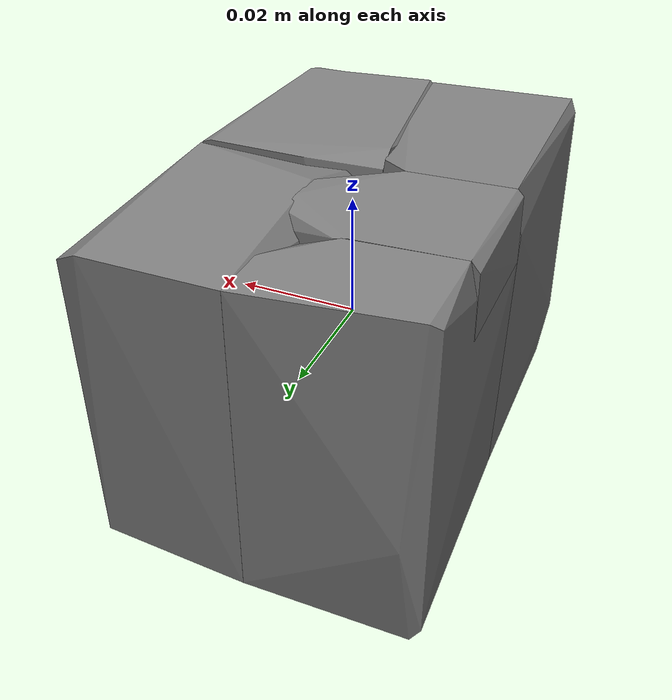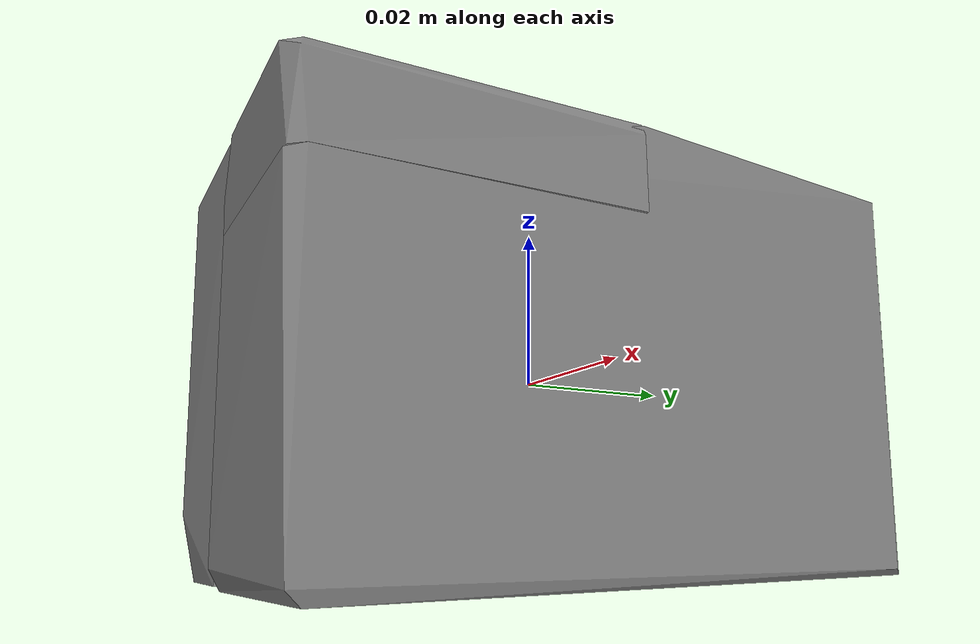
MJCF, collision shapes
<mujoco model="foam_brick">
  <compiler angle="radian" />

  <asset>
    <mesh name="foam_brick_visual_mesh" file="foam_brick/textured.obj" />
    <mesh name="foam_brick_collision_mesh_0" file="foam_brick/textured_coacd_0.stl" />
    <mesh name="foam_brick_collision_mesh_1" file="foam_brick/textured_coacd_1.stl" />
    <mesh name="foam_brick_collision_mesh_2" file="foam_brick/textured_coacd_2.stl" />
    <mesh name="foam_brick_collision_mesh_3" file="foam_brick/textured_coacd_3.stl" />
    <mesh name="foam_brick_collision_mesh_4" file="foam_brick/textured_coacd_4.stl" />
    <texture name="foam_brick_texture" type="2d" file="foam_brick/texture_map.png" />
    <material name="foam_brick_material" texture="foam_brick_texture" />
  </asset>

  <worldbody>
    <body name="foam_brick" pos="0 0 0" euler="0 0 0">
      <freejoint name="foam_brick_joint" />
      <geom name="foam_brick_visual_geom" type="mesh" mesh="foam_brick_visual_mesh" material="foam_brick_material" pos="0.0 -0.0 -0.0" euler="0 0 0" contype="0" conaffinity="0" group="0" />
      <geom name="foam_brick_collision_geom_0" type="mesh" mesh="foam_brick_collision_mesh_0" pos="0.0 -0.0 -0.0" euler="0 0 0" contype="1" conaffinity="1" group="3" />
      <geom name="foam_brick_collision_geom_1" type="mesh" mesh="foam_brick_collision_mesh_1" pos="0.0 -0.0 -0.0" euler="0 0 0" contype="1" conaffinity="1" group="3" />
      <geom name="foam_brick_collision_geom_2" type="mesh" mesh="foam_brick_collision_mesh_2" pos="0.0 -0.0 -0.0" euler="0 0 0" contype="1" conaffinity="1" group="3" />
      <geom name="foam_brick_collision_geom_3" type="mesh" mesh="foam_brick_collision_mesh_3" pos="0.0 -0.0 -0.0" euler="0 0 0" contype="1" conaffinity="1" group="3" />
      <geom name="foam_brick_collision_geom_4" type="mesh" mesh="foam_brick_collision_mesh_4" pos="0.0 -0.0 -0.0" euler="0 0 0" contype="1" conaffinity="1" group="3" />
      <inertial pos="0 0 0" euler="0 0 0" mass="0.028" diaginertia="0.001 0.001 0.001" />
    </body>
  </worldbody>
</mujoco>
